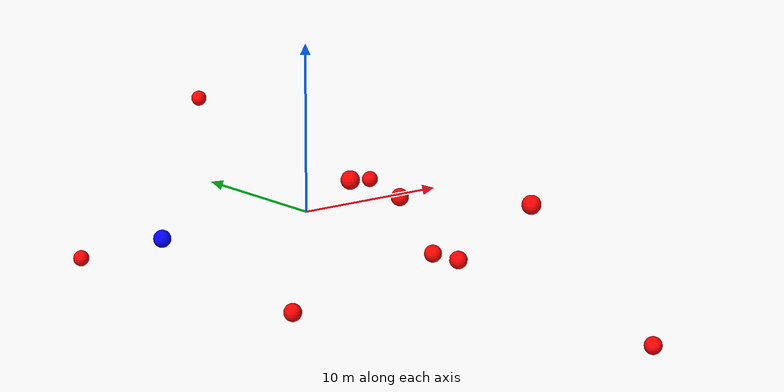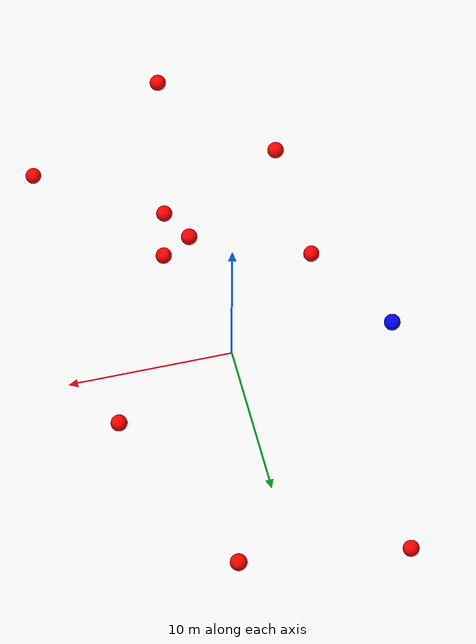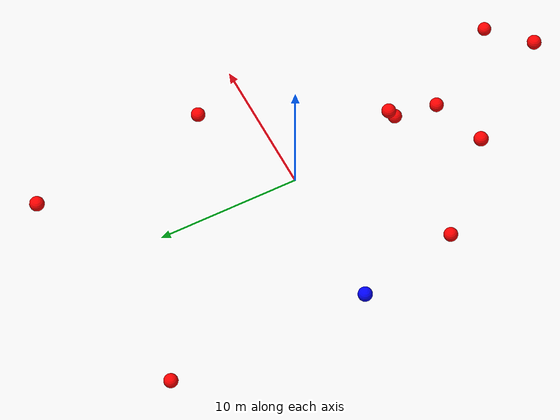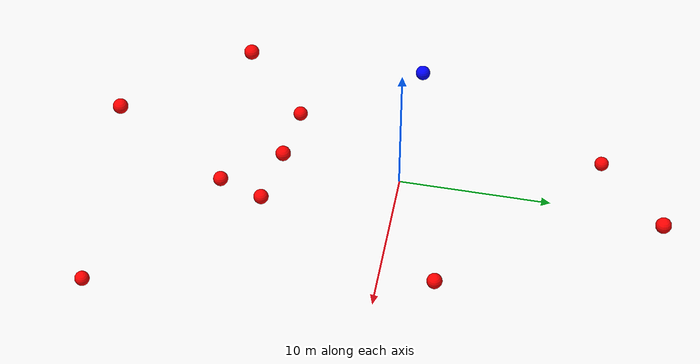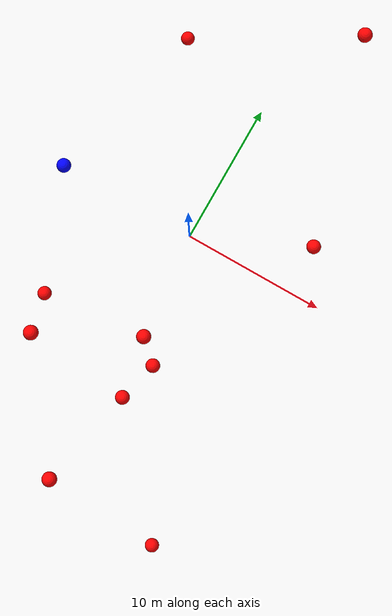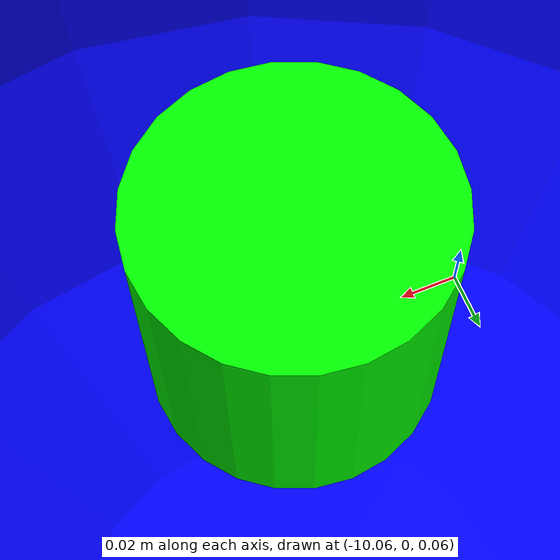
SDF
<?xml version="1.0" ?>
<sdf version="1.8">
    <world name="3d_world">
        <physics name="1ms" type="ode">
            <max_step_size>0.001</max_step_size>
            <real_time_factor>1.0</real_time_factor>
            <real_time_update_rate>1000.0</real_time_update_rate>
        </physics>
        <gravity>0 0 0</gravity>

        <plugin
            filename="gz-sim-physics-system"
            name="gz::sim::v8::systems::Physics">
        </plugin>
        <plugin
            filename="libignition-gazebo-user-commands-system.so"
            name="ignition::gazebo::systems::UserCommands">
        </plugin>
        <plugin
            filename="gz-sim-scene-broadcaster-system"
            name="gz::sim::systems::SceneBroadcaster">
        </plugin>
        <plugin
            filename="gz-sim-sensors-system"
            name="gz::sim::systems::Sensors">
            <render_engine>ogre2</render_engine>
        </plugin>

        <light type="directional" name="sun">
            <cast_shadows>true</cast_shadows>
            <pose>0 0 10 0 0 0</pose>
            <diffuse>0.8 0.8 0.8 1</diffuse>
            <specular>0.2 0.2 0.2 1</specular>
            <attenuation>
                <range>1000</range>
                <constant>0.9</constant>
                <linear>0.01</linear>
                <quadratic>0.001</quadratic>
            </attenuation>
            <direction>-0.5 0.1 -0.9</direction>
        </light>

        <!-- AGENTE -->
        <model name='agente' canonical_link='chassis'>
            <pose relative_to='world'>-10.0 0 0.0 0 0 0</pose>
            <link name='chassis'>
                <pose relative_to='__model__'>0.0 0 0.0 0 0 0</pose>
                <inertial>
                    <mass>1.14395</mass>
                    <inertia>
                        <ixx>0.095329</ixx>
                        <ixy>0</ixy>
                        <ixz>0</ixz>
                        <iyy>0.381317</iyy>
                        <iyz>0</iyz>
                        <izz>0.476646</izz>
                    </inertia>
                </inertial>
                <visual name='visual'>
                    <geometry>
                        <sphere>
                            <radius>0.5</radius>
                        </sphere>
                    </geometry>
                    <material>
                        <ambient>0.0 0.0 1.0 1</ambient>
                        <diffuse>0.0 0.0 1.0 1</diffuse>
                        <specular>0.0 0.0 1.0 1</specular>
                    </material>
                </visual>
                <collision name='collision'>
                    <geometry>
                        <sphere>
                            <radius>0.5</radius>
                        </sphere>
                    </geometry>
                </collision>
                <enable_gravity>false</enable_gravity>
            </link>

            <link name='lidar_link'>
                <pose relative_to='chassis'>0.0 0 0.1 0 0 0</pose>
                <inertial>
                    <mass>0.1</mass>
                    <inertia>
                        <ixx>0.000166667</ixx>
                        <iyy>0.000166667</iyy>
                        <izz>0.000166667</izz>
                    </inertia>
                </inertial>
                <collision name='collision'>
                    <geometry>
                        <cylinder>
                            <radius>0.05</radius>
                            <length>0.1</length>
                        </cylinder>
                    </geometry>
                </collision>
                <visual name='visual'>
                    <geometry>
                        <cylinder>
                            <radius>0.05</radius>
                            <length>0.1</length>
                        </cylinder>
                    </geometry>
                    <material>
                        <ambient>0.0 1.0 0.0 1</ambient>
                        <diffuse>0.0 1.0 0.0 1</diffuse>
                        <specular>0.0 1.0 0.0 1</specular>
                    </material>
                </visual>
                <sensor name="lidar" type="gpu_lidar">
                    <topic>scan</topic>
                    <update_rate>10</update_rate>
                    <lidar>
                        <scan>
                            <horizontal>
                                <samples>5000</samples>
                                <resolution>1</resolution>
                                <min_angle>-3.14159</min_angle>
                                <max_angle>3.14159</max_angle>
                            </horizontal>
                        </scan>
                        <range>
                            <min>0.1</min>
                            <max>10.0</max>
                            <resolution>0.01</resolution>
                        </range>
                    </lidar>
                    <visualize>true</visualize>
                    <always_on>true</always_on>
                    <update_rate>10</update_rate>
                    <pose_frame>lidar</pose_frame>
                </sensor>
                <enable_gravity>false</enable_gravity>
            </link>

            <joint name="lidar_joint" type="fixed">
                <parent>chassis</parent>
                <child>lidar_link</child>
            </joint>

            <plugin
                filename="ignition-gazebo-joint-state-publisher-system"
                name="ignition::gazebo::systems::JointStatePublisher">
            </plugin>
            <plugin
                filename="ignition-gazebo-odometry-publisher-system"
                name="ignition::gazebo::systems::OdometryPublisher">
                <dimensions>3</dimensions>
            </plugin>
            <plugin
                filename="ignition-gazebo-velocity-control-system"
                name="ignition::gazebo::systems::VelocityControl">
                <initial_linear>0.0 0 0</initial_linear>
                <initial_angular>0 0 0.0</initial_angular>
            </plugin>
            <plugin
                filename="libignition-gazebo-pose-publisher-system.so"
                name="ignition::gazebo::systems::PosePublisher">
                <topic>/agente/pose</topic>
                <frame_id>agente</frame_id>
                <update_rate>30</update_rate>
            </plugin>
        </model>

        <!-- OBSTACLE 1 -->
        <model name='obstacle_1' canonical_link='obstacle'>
            <static>false</static>
            <pose relative_to='world'>8.23 -19.93 -4.76 0 0 0</pose>
            <link name='obstacle'>
                <pose relative_to='__model__'>0.0 0 0.0 0 0 0</pose>
                <visual name='visual'>
                    <geometry>
                        <sphere>
                            <radius>0.50</radius>
                        </sphere>
                    </geometry>
                    <material>
                        <ambient>1.0 0.0 0.0 1</ambient>
                        <diffuse>1.0 0.0 0.0 1</diffuse>
                        <specular>1.0 0.0 0.0 1</specular>
                    </material>
                </visual>
                <collision name='collision'>
                    <geometry>
                        <sphere>
                            <radius>0.50</radius>
                        </sphere>
                    </geometry>
                </collision>
                <enable_gravity>false</enable_gravity>
            </link>

            <plugin
                filename="ignition-gazebo-velocity-control-system"
                name="ignition::gazebo::systems::VelocityControl">
                <initial_linear>-0.82 1.77 0.42</initial_linear>
                <initial_angular>0 0 0</initial_angular>
            </plugin>

            <plugin
                filename="ignition-gazebo-odometry-publisher-system"
                name="ignition::gazebo::systems::OdometryPublisher">
                <dimensions>3</dimensions>
            </plugin>
        </model>

        <!-- OBSTACLE 2 -->
        <model name='obstacle_2' canonical_link='obstacle'>
            <static>false</static>
            <pose relative_to='world'>3.73 16.95 4.01 0 0 0</pose>
            <link name='obstacle'>
                <pose relative_to='__model__'>0.0 0 0.0 0 0 0</pose>
                <visual name='visual'>
                    <geometry>
                        <sphere>
                            <radius>0.50</radius>
                        </sphere>
                    </geometry>
                    <material>
                        <ambient>1.0 0.0 0.0 1</ambient>
                        <diffuse>1.0 0.0 0.0 1</diffuse>
                        <specular>1.0 0.0 0.0 1</specular>
                    </material>
                </visual>
                <collision name='collision'>
                    <geometry>
                        <sphere>
                            <radius>0.50</radius>
                        </sphere>
                    </geometry>
                </collision>
                <enable_gravity>false</enable_gravity>
            </link>

            <plugin
                filename="ignition-gazebo-velocity-control-system"
                name="ignition::gazebo::systems::VelocityControl">
                <initial_linear>-0.32 -1.92 -0.45</initial_linear>
                <initial_angular>0 0 0</initial_angular>
            </plugin>

            <plugin
                filename="ignition-gazebo-odometry-publisher-system"
                name="ignition::gazebo::systems::OdometryPublisher">
                <dimensions>3</dimensions>
            </plugin>
        </model>

        <!-- OBSTACLE 3 -->
        <model name='obstacle_3' canonical_link='obstacle'>
            <static>false</static>
            <pose relative_to='world'>-7.75 13.23 -4.40 0 0 0</pose>
            <link name='obstacle'>
                <pose relative_to='__model__'>0.0 0 0.0 0 0 0</pose>
                <visual name='visual'>
                    <geometry>
                        <sphere>
                            <radius>0.50</radius>
                        </sphere>
                    </geometry>
                    <material>
                        <ambient>1.0 0.0 0.0 1</ambient>
                        <diffuse>1.0 0.0 0.0 1</diffuse>
                        <specular>1.0 0.0 0.0 1</specular>
                    </material>
                </visual>
                <collision name='collision'>
                    <geometry>
                        <sphere>
                            <radius>0.50</radius>
                        </sphere>
                    </geometry>
                </collision>
                <enable_gravity>false</enable_gravity>
            </link>

            <plugin
                filename="ignition-gazebo-velocity-control-system"
                name="ignition::gazebo::systems::VelocityControl">
                <initial_linear>0.87 -1.71 0.57</initial_linear>
                <initial_angular>0 0 0</initial_angular>
            </plugin>

            <plugin
                filename="ignition-gazebo-odometry-publisher-system"
                name="ignition::gazebo::systems::OdometryPublisher">
                <dimensions>3</dimensions>
            </plugin>
        </model>

        <!-- OBSTACLE 4 -->
        <model name='obstacle_4' canonical_link='obstacle'>
            <static>false</static>
            <pose relative_to='world'>2.15 -8.91 -1.00 0 0 0</pose>
            <link name='obstacle'>
                <pose relative_to='__model__'>0.0 0 0.0 0 0 0</pose>
                <visual name='visual'>
                    <geometry>
                        <sphere>
                            <radius>0.50</radius>
                        </sphere>
                    </geometry>
                    <material>
                        <ambient>1.0 0.0 0.0 1</ambient>
                        <diffuse>1.0 0.0 0.0 1</diffuse>
                        <specular>1.0 0.0 0.0 1</specular>
                    </material>
                </visual>
                <collision name='collision'>
                    <geometry>
                        <sphere>
                            <radius>0.50</radius>
                        </sphere>
                    </geometry>
                </collision>
                <enable_gravity>false</enable_gravity>
            </link>

            <plugin
                filename="ignition-gazebo-velocity-control-system"
                name="ignition::gazebo::systems::VelocityControl">
                <initial_linear>-0.95 1.75 0.20</initial_linear>
                <initial_angular>0 0 0</initial_angular>
            </plugin>

            <plugin
                filename="ignition-gazebo-odometry-publisher-system"
                name="ignition::gazebo::systems::OdometryPublisher">
                <dimensions>3</dimensions>
            </plugin>
        </model>

        <!-- OBSTACLE 5 -->
        <model name='obstacle_5' canonical_link='obstacle'>
            <static>false</static>
            <pose relative_to='world'>0.26 -18.49 3.94 0 0 0</pose>
            <link name='obstacle'>
                <pose relative_to='__model__'>0.0 0 0.0 0 0 0</pose>
                <visual name='visual'>
                    <geometry>
                        <sphere>
                            <radius>0.50</radius>
                        </sphere>
                    </geometry>
                    <material>
                        <ambient>1.0 0.0 0.0 1</ambient>
                        <diffuse>1.0 0.0 0.0 1</diffuse>
                        <specular>1.0 0.0 0.0 1</specular>
                    </material>
                </visual>
                <collision name='collision'>
                    <geometry>
                        <sphere>
                            <radius>0.50</radius>
                        </sphere>
                    </geometry>
                </collision>
                <enable_gravity>false</enable_gravity>
            </link>

            <plugin
                filename="ignition-gazebo-velocity-control-system"
                name="ignition::gazebo::systems::VelocityControl">
                <initial_linear>0.56 1.88 -0.40</initial_linear>
                <initial_angular>0 0 0</initial_angular>
            </plugin>

            <plugin
                filename="ignition-gazebo-odometry-publisher-system"
                name="ignition::gazebo::systems::OdometryPublisher">
                <dimensions>3</dimensions>
            </plugin>
        </model>

        <!-- OBSTACLE 6 -->
        <model name='obstacle_6' canonical_link='obstacle'>
            <static>false</static>
            <pose relative_to='world'>1.44 -11.81 -0.61 0 0 0</pose>
            <link name='obstacle'>
                <pose relative_to='__model__'>0.0 0 0.0 0 0 0</pose>
                <visual name='visual'>
                    <geometry>
                        <sphere>
                            <radius>0.50</radius>
                        </sphere>
                    </geometry>
                    <material>
                        <ambient>1.0 0.0 0.0 1</ambient>
                        <diffuse>1.0 0.0 0.0 1</diffuse>
                        <specular>1.0 0.0 0.0 1</specular>
                    </material>
                </visual>
                <collision name='collision'>
                    <geometry>
                        <sphere>
                            <radius>0.50</radius>
                        </sphere>
                    </geometry>
                </collision>
                <enable_gravity>false</enable_gravity>
            </link>

            <plugin
                filename="ignition-gazebo-velocity-control-system"
                name="ignition::gazebo::systems::VelocityControl">
                <initial_linear>0.19 1.99 0.10</initial_linear>
                <initial_angular>0 0 0</initial_angular>
            </plugin>

            <plugin
                filename="ignition-gazebo-odometry-publisher-system"
                name="ignition::gazebo::systems::OdometryPublisher">
                <dimensions>3</dimensions>
            </plugin>
        </model>

        <!-- OBSTACLE 7 -->
        <model name='obstacle_7' canonical_link='obstacle'>
            <static>false</static>
            <pose relative_to='world'>0.83 -7.57 2.19 0 0 0</pose>
            <link name='obstacle'>
                <pose relative_to='__model__'>0.0 0 0.0 0 0 0</pose>
                <visual name='visual'>
                    <geometry>
                        <sphere>
                            <radius>0.50</radius>
                        </sphere>
                    </geometry>
                    <material>
                        <ambient>1.0 0.0 0.0 1</ambient>
                        <diffuse>1.0 0.0 0.0 1</diffuse>
                        <specular>1.0 0.0 0.0 1</specular>
                    </material>
                </visual>
                <collision name='collision'>
                    <geometry>
                        <sphere>
                            <radius>0.50</radius>
                        </sphere>
                    </geometry>
                </collision>
                <enable_gravity>false</enable_gravity>
            </link>

            <plugin
                filename="ignition-gazebo-velocity-control-system"
                name="ignition::gazebo::systems::VelocityControl">
                <initial_linear>-0.38 1.89 -0.55</initial_linear>
                <initial_angular>0 0 0</initial_angular>
            </plugin>

            <plugin
                filename="ignition-gazebo-odometry-publisher-system"
                name="ignition::gazebo::systems::OdometryPublisher">
                <dimensions>3</dimensions>
            </plugin>
        </model>

        <!-- OBSTACLE 8 -->
        <model name='obstacle_8' canonical_link='obstacle'>
            <static>false</static>
            <pose relative_to='world'>-7.13 -8.25 -2.80 0 0 0</pose>
            <link name='obstacle'>
                <pose relative_to='__model__'>0.0 0 0.0 0 0 0</pose>
                <visual name='visual'>
                    <geometry>
                        <sphere>
                            <radius>0.50</radius>
                        </sphere>
                    </geometry>
                    <material>
                        <ambient>1.0 0.0 0.0 1</ambient>
                        <diffuse>1.0 0.0 0.0 1</diffuse>
                        <specular>1.0 0.0 0.0 1</specular>
                    </material>
                </visual>
                <collision name='collision'>
                    <geometry>
                        <sphere>
                            <radius>0.50</radius>
                        </sphere>
                    </geometry>
                </collision>
                <enable_gravity>false</enable_gravity>
            </link>

            <plugin
                filename="ignition-gazebo-velocity-control-system"
                name="ignition::gazebo::systems::VelocityControl">
                <initial_linear>0.99 1.65 0.56</initial_linear>
                <initial_angular>0 0 0</initial_angular>
            </plugin>

            <plugin
                filename="ignition-gazebo-odometry-publisher-system"
                name="ignition::gazebo::systems::OdometryPublisher">
                <dimensions>3</dimensions>
            </plugin>
        </model>

        <!-- OBSTACLE 9 -->
        <model name='obstacle_9' canonical_link='obstacle'>
            <static>false</static>
            <pose relative_to='world'>7.72 3.54 0.25 0 0 0</pose>
            <link name='obstacle'>
                <pose relative_to='__model__'>0.0 0 0.0 0 0 0</pose>
                <visual name='visual'>
                    <geometry>
                        <sphere>
                            <radius>0.50</radius>
                        </sphere>
                    </geometry>
                    <material>
                        <ambient>1.0 0.0 0.0 1</ambient>
                        <diffuse>1.0 0.0 0.0 1</diffuse>
                        <specular>1.0 0.0 0.0 1</specular>
                    </material>
                </visual>
                <collision name='collision'>
                    <geometry>
                        <sphere>
                            <radius>0.50</radius>
                        </sphere>
                    </geometry>
                </collision>
                <enable_gravity>false</enable_gravity>
            </link>

            <plugin
                filename="ignition-gazebo-velocity-control-system"
                name="ignition::gazebo::systems::VelocityControl">
                <initial_linear>-0.55 -0.61 -0.04</initial_linear>
                <initial_angular>0 0 0</initial_angular>
            </plugin>

            <plugin
                filename="ignition-gazebo-odometry-publisher-system"
                name="ignition::gazebo::systems::OdometryPublisher">
                <dimensions>3</dimensions>
            </plugin>
        </model>

        <!-- OBSTACLE 10 -->
        <model name='obstacle_10' canonical_link='obstacle'>
            <static>false</static>
            <pose relative_to='world'>-5.41 -10.98 4.67 0 0 0</pose>
            <link name='obstacle'>
                <pose relative_to='__model__'>0.0 0 0.0 0 0 0</pose>
                <visual name='visual'>
                    <geometry>
                        <sphere>
                            <radius>0.50</radius>
                        </sphere>
                    </geometry>
                    <material>
                        <ambient>1.0 0.0 0.0 1</ambient>
                        <diffuse>1.0 0.0 0.0 1</diffuse>
                        <specular>1.0 0.0 0.0 1</specular>
                    </material>
                </visual>
                <collision name='collision'>
                    <geometry>
                        <sphere>
                            <radius>0.50</radius>
                        </sphere>
                    </geometry>
                </collision>
                <enable_gravity>false</enable_gravity>
            </link>

            <plugin
                filename="ignition-gazebo-velocity-control-system"
                name="ignition::gazebo::systems::VelocityControl">
                <initial_linear>1.41 1.31 -0.56</initial_linear>
                <initial_angular>0 0 0</initial_angular>
            </plugin>

            <plugin
                filename="ignition-gazebo-odometry-publisher-system"
                name="ignition::gazebo::systems::OdometryPublisher">
                <dimensions>3</dimensions>
            </plugin>
        </model>

    </world>
</sdf>
